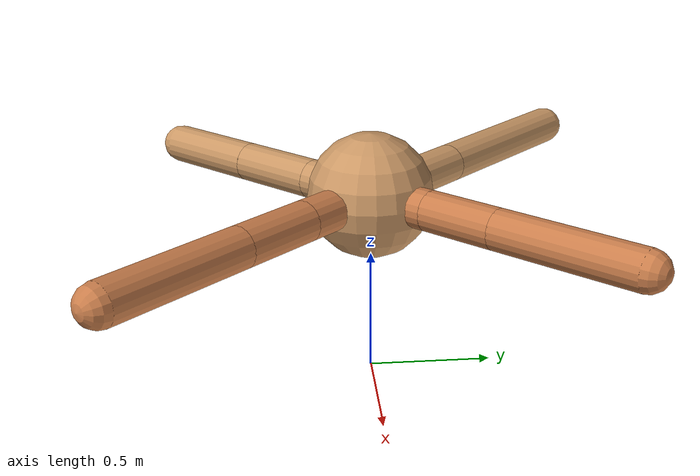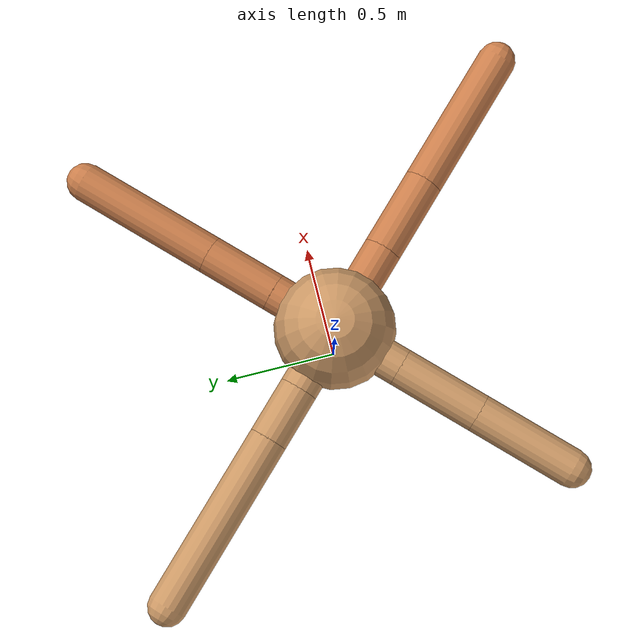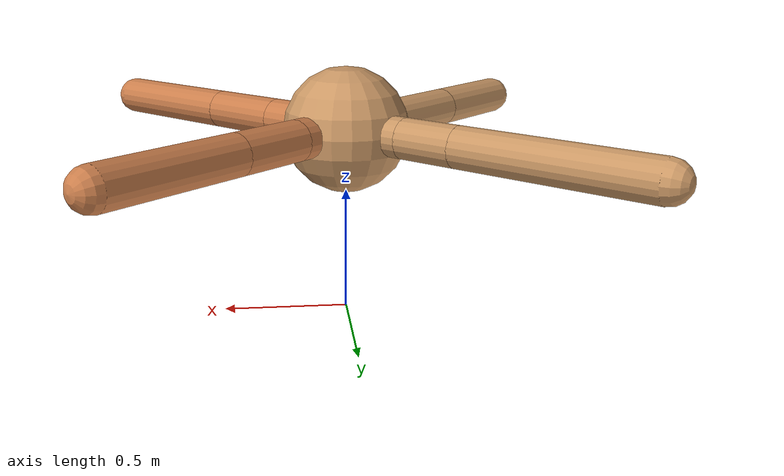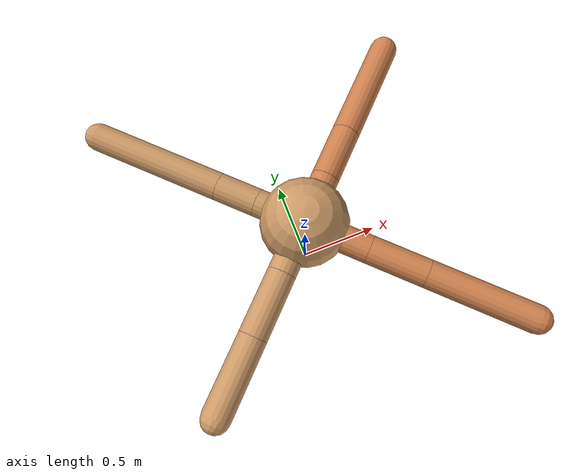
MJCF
<mujoco model="ant">
  <compiler angle="degree" coordinate="local" inertiafromgeom="true" />
  <option integrator="RK4" timestep="0.01" />
  <custom>
    <numeric data="0.0 0.0 0.55 1.0 0.0 0.0 0.0 0.0 1.0 0.0 -1.0 0.0 -1.0 0.0 1.0" name="init_qpos" />
  </custom>
  <default>
    <joint armature="1" damping="1" limited="true" />
    <geom conaffinity="0" condim="3" density="5.0" friction="1.5 0.1 0.1" margin="0.01" rgba="0.8 0.6 0.4 1" />
  </default>
  <worldbody>
    <body name="torso" pos="0 0 0.75">
      <geom name="torso_geom" pos="0 0 0" size="0.25" type="sphere" />

      <body name="front_left_leg" pos="0 0 0">
        <geom fromto="0.0 0.0 0.0 0.20505738888009814 0.20505738888009814 0.0" name="aux_1_geom" size="0.08" type="capsule" rgba=".8 .5 .3 1" />
        <body name="aux_1" pos="0.20505738888009814 0.20505738888009814 0.0">
          <joint axis="0 0 1" name="hip_1" pos="0.0 0.0 0.0" range="-40 40" type="hinge" />
          <geom fromto="0.0 0.0 0.0 0.2154987239384819 0.2154987239384819 0.0" name="left_leg_geom" size="0.08" type="capsule" rgba=".8 .5 .3 1" />
          <body pos="0.2154987239384819 0.2154987239384819 0.0" name="front_left_foot">
            <joint axis="-1 1 0" name="ankle_1" pos="0.0 0.0 0.0" range="30 100" type="hinge" />
            <geom fromto="0.0 0.0 0.0 0.4238032616287555 0.4238032616287555 0.0" name="left_ankle_geom" size="0.08" type="capsule" rgba=".8 .5 .3 1" />
          </body>
        </body>
      </body>
      <body name="front_right_leg" pos="0 0 0">
        <geom fromto="0.0 0.0 0.0 -0.20319109136446328 0.20319109136446328 0.0" name="aux_2_geom" size="0.08" type="capsule" />
        <body name="aux_2" pos="-0.20319109136446328 0.20319109136446328 0.0">
          <joint axis="0 0 1" name="hip_2" pos="0.0 0.0 0.0" range="-40 40" type="hinge" />
          <geom fromto="0.0 0.0 0.0 -0.16652268631414555 0.16652268631414555 0.0" name="right_leg_geom" size="0.08" type="capsule" />
          <body pos="-0.16652268631414555 0.16652268631414555 0.0" name="front_right_foot">
            <joint axis="1 1 0" name="ankle_2" pos="0.0 0.0 0.0" range="-100 -30" type="hinge" />
            <geom fromto="0.0 0.0 0.0 -0.543134531290776 0.543134531290776 0.0" name="right_ankle_geom" size="0.08" type="capsule" />
          </body>
        </body>
      </body>
      <body name="left_back_leg" pos="0 0 0">
        <geom fromto="0.0 0.0 0.0 -0.21800995161927172 -0.21800995161927172 0.0" name="aux_3_geom" size="0.08" type="capsule" />
        <body name="aux_3" pos="-0.21800995161927172 -0.21800995161927172 0.0">
          <joint axis="0 0 1" name="hip_3" pos="0.0 0.0 0.0" range="-40 40" type="hinge" />
          <geom fromto="0.0 0.0 0.0 -0.256380996784024 -0.256380996784024 0.0" name="back_leg_geom" size="0.08" type="capsule" />
          <body pos="-0.256380996784024 -0.256380996784024 0.0" name="left_back_foot">
            <joint axis="-1 1 0" name="ankle_3" pos="0.0 0.0 0.0" range="-100 -30" type="hinge" />
            <geom fromto="0.0 0.0 0.0 -0.3049817167172345 -0.3049817167172345 0.0" name="third_ankle_geom" size="0.08" type="capsule" />
          </body>
        </body>
      </body>
      <body name="right_back_leg" pos="0 0 0">
        <geom fromto="0.0 0.0 0.0 0.26919588688424156 -0.26919588688424156 0.0" name="aux_4_geom" size="0.08" type="capsule" rgba=".8 .5 .3 1" />
        <body name="aux_4" pos="0.26919588688424156 -0.26919588688424156 0.0">
          <joint axis="0 0 1" name="hip_4" pos="0.0 0.0 0.0" range="-40 40" type="hinge" />
          <geom fromto="0.0 0.0 0.0 0.233853052321671 -0.233853052321671 0.0" name="rightback_leg_geom" size="0.08" type="capsule" rgba=".8 .5 .3 1" />
          <body pos="0.233853052321671 -0.233853052321671 0.0" name="right_back_foot">
            <joint axis="1 1 0" name="ankle_4" pos="0.0 0.0 0.0" range="30 100" type="hinge" />
            <geom fromto="0.0 0.0 0.0 0.4302735443104553 -0.4302735443104553 0.0" name="fourth_ankle_geom" size="0.08" type="capsule" rgba=".8 .5 .3 1" />
          </body>
        </body>
      </body>
    </body>
  </worldbody>
  <actuator>
    <motor ctrllimited="true" ctrlrange="-1.0 1.0" joint="hip_4" gear="150" />
    <motor ctrllimited="true" ctrlrange="-1.0 1.0" joint="ankle_4" gear="150" />
    <motor ctrllimited="true" ctrlrange="-1.0 1.0" joint="hip_1" gear="150" />
    <motor ctrllimited="true" ctrlrange="-1.0 1.0" joint="ankle_1" gear="150" />
    <motor ctrllimited="true" ctrlrange="-1.0 1.0" joint="hip_2" gear="150" />
    <motor ctrllimited="true" ctrlrange="-1.0 1.0" joint="ankle_2" gear="150" />
    <motor ctrllimited="true" ctrlrange="-1.0 1.0" joint="hip_3" gear="150" />
    <motor ctrllimited="true" ctrlrange="-1.0 1.0" joint="ankle_3" gear="150" />
  </actuator>
</mujoco>
